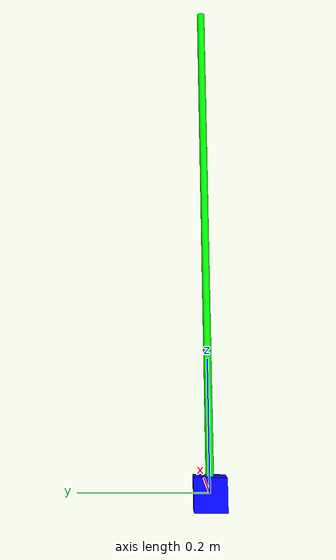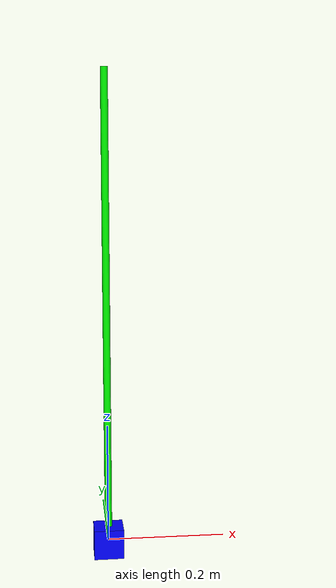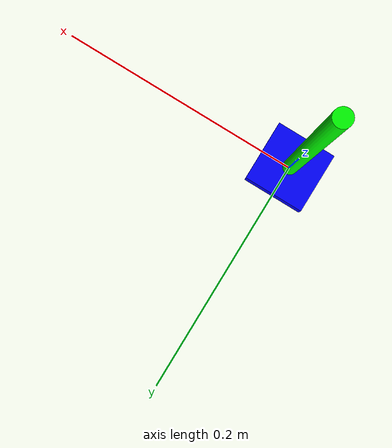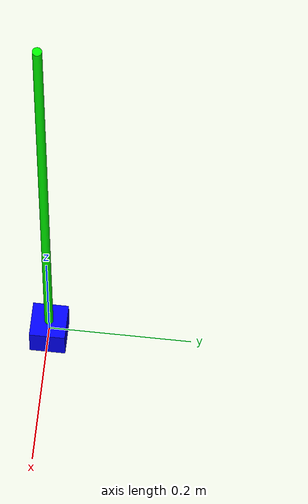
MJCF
<mujoco model="single_pendulum">
  <compiler angle="radian"/>

  <worldbody>
    <geom size="0.025 0.025 0.025" type="box" rgba="0 0 1 1"/>
    <body name="branch_link">
      <inertial pos="0 0 0.395" mass="0.05052" diaginertia="0.01051 0.01051 9.338e-07"/>
      <joint name="base_branch_joint" pos="0 0 0" axis="0 1 0"/>
      <geom size="0.00608 0.395" pos="0 0 0.395" type="cylinder" rgba="0 1 0 1"/>
    </body>
  </worldbody>
</mujoco>
